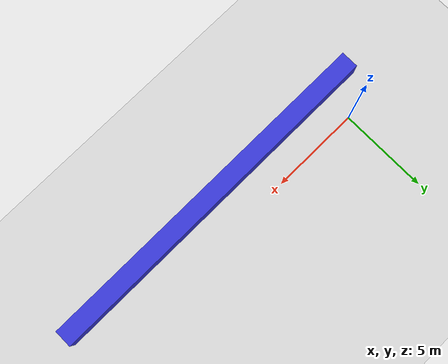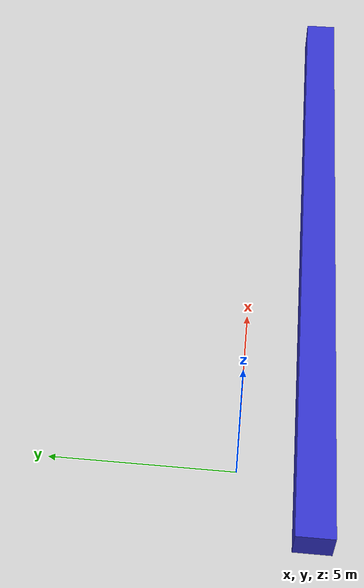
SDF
<?xml version="1.0" ?>
<!--
  Mundo mínimo para Gazebo Harmonic (gz-sim 8).
  Contém: plugins de sistema, uma luz (sol), um plano de chão e um obstáculo
  simples (caixa) para testar o LiDAR mais tarde.
-->
<sdf version="1.10">
  <world name="pioneer_world">

    <!-- Plugins de sistema obrigatórios -->
    <plugin filename="gz-sim-physics-system"
            name="gz::sim::systems::Physics"/>
    <plugin filename="gz-sim-user-commands-system"
            name="gz::sim::systems::UserCommands"/>
    <plugin filename="gz-sim-scene-broadcaster-system"
            name="gz::sim::systems::SceneBroadcaster"/>
    <!-- Sensores (necessário para o LiDAR renderizar leituras) -->
    <plugin filename="gz-sim-sensors-system"
            name="gz::sim::systems::Sensors">
      <render_engine>ogre2</render_engine>
    </plugin>

    <gravity>0 0 -9.8</gravity>

    <!-- Luz solar -->
    <light type="directional" name="sun">
      <cast_shadows>true</cast_shadows>
      <pose>0 0 10 0 0 0</pose>
      <diffuse>0.8 0.8 0.8 1</diffuse>
      <specular>0.2 0.2 0.2 1</specular>
      <direction>-0.5 0.1 -0.9</direction>
    </light>

    <!-- Plano de chão -->
    <model name="ground_plane">
      <static>true</static>
      <link name="link">
        <collision name="collision">
          <geometry>
            <plane>
              <normal>0 0 1</normal>
              <size>100 100</size>
            </plane>
          </geometry>
        </collision>
        <visual name="visual">
          <geometry>
            <plane>
              <normal>0 0 1</normal>
              <size>100 100</size>
            </plane>
          </geometry>
          <material>
            <ambient>0.8 0.8 0.8 1</ambient>
            <diffuse>0.8 0.8 0.8 1</diffuse>
            <specular>0.2 0.2 0.2 1</specular>
          </material>
        </visual>
      </link>
    </model>

    <!-- Obstáculo simples para teste do LiDAR -->
    <model name="obstacle_box">
      <static>true</static>
      <pose>8 -2 0.5 0 0 0</pose>
      <link name="link">
        <collision name="collision">
          <geometry><box><size>20 1 1</size></box></geometry>
        </collision>
        <visual name="visual">
          <geometry><box><size>20 1 1</size></box></geometry>
          <material>
            <ambient>0.2 0.2 0.8 1</ambient>
            <diffuse>0.2 0.2 0.8 1</diffuse>
          </material>
        </visual>
      </link>
    </model>

  </world>
</sdf>
